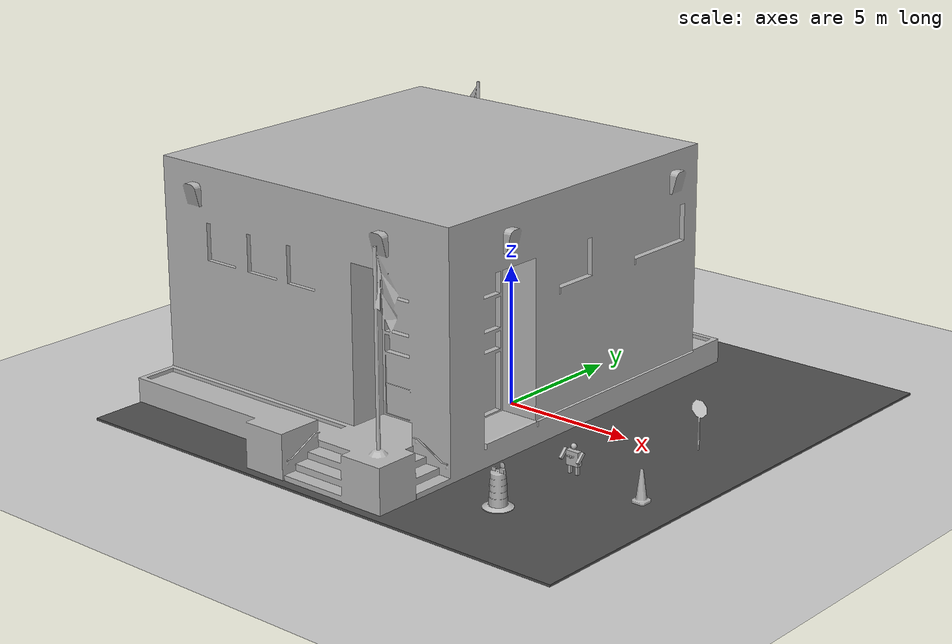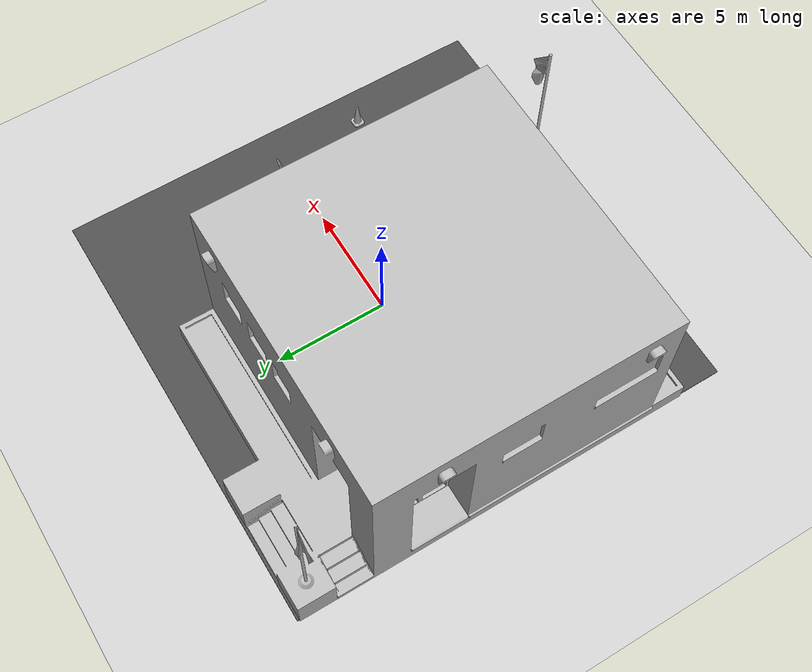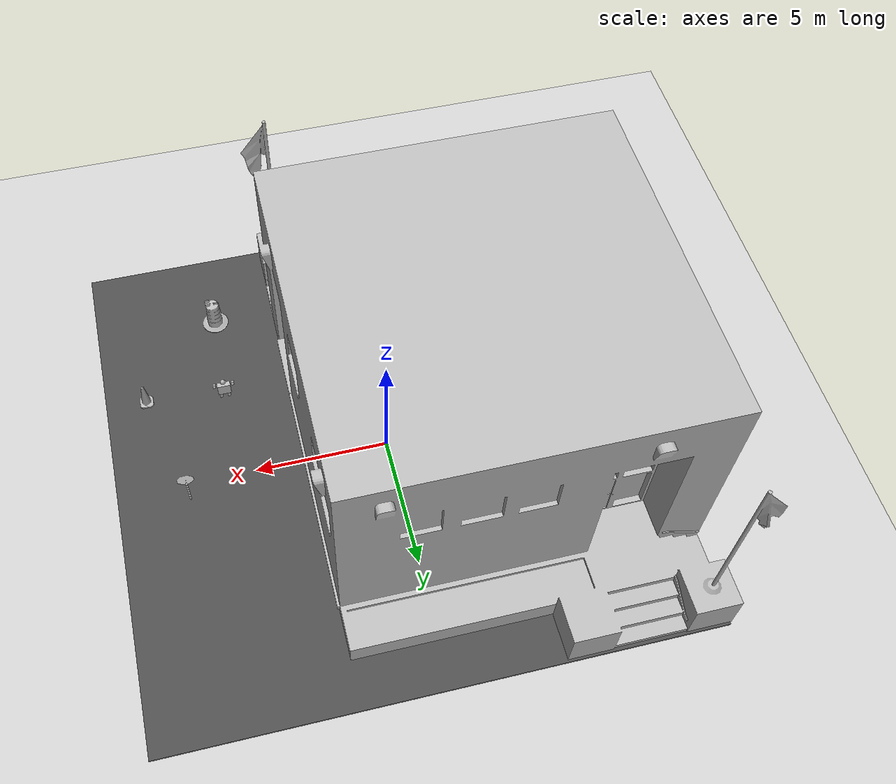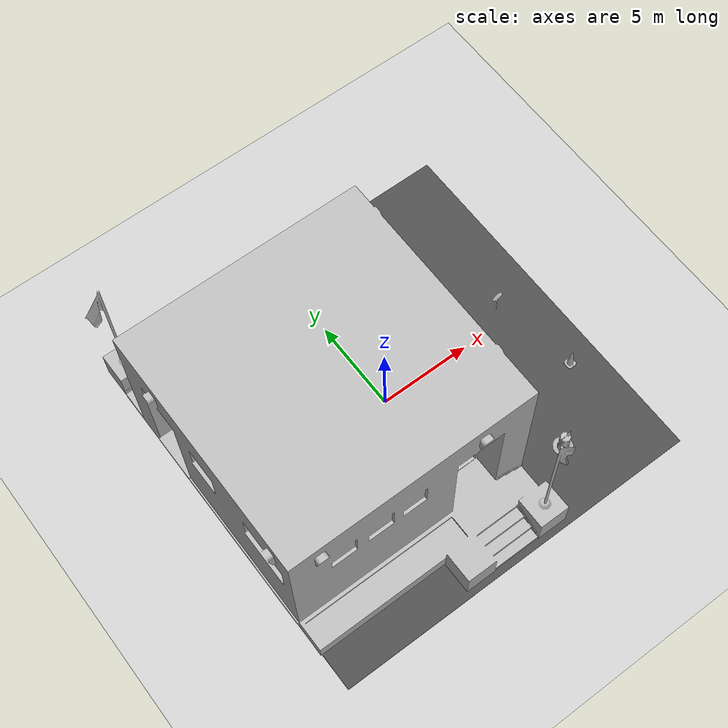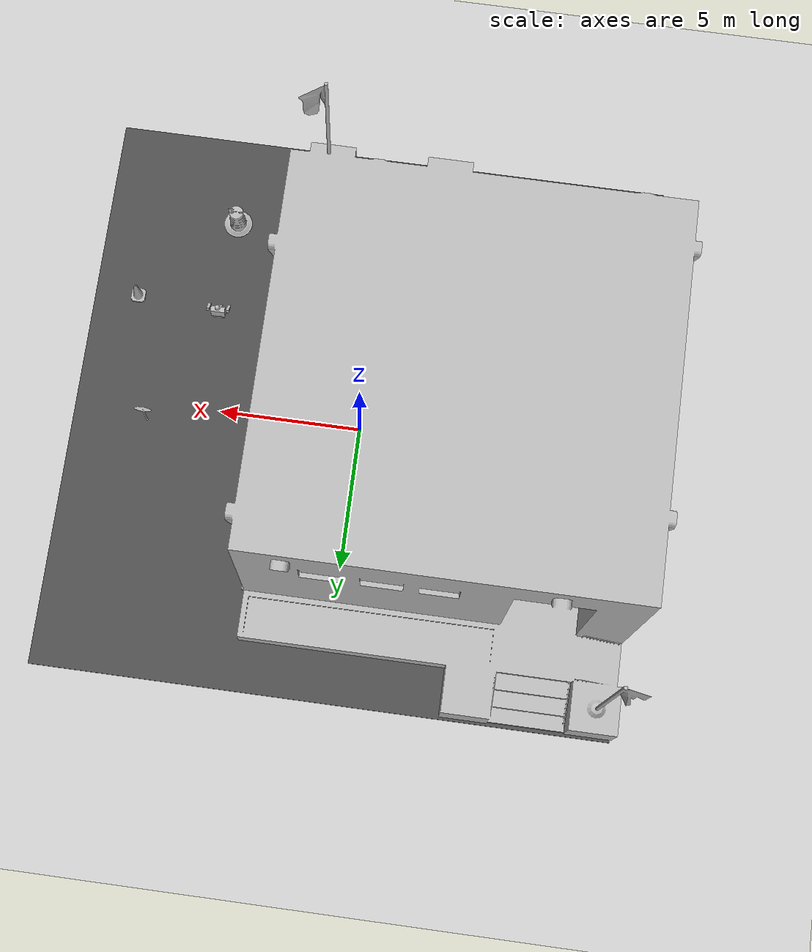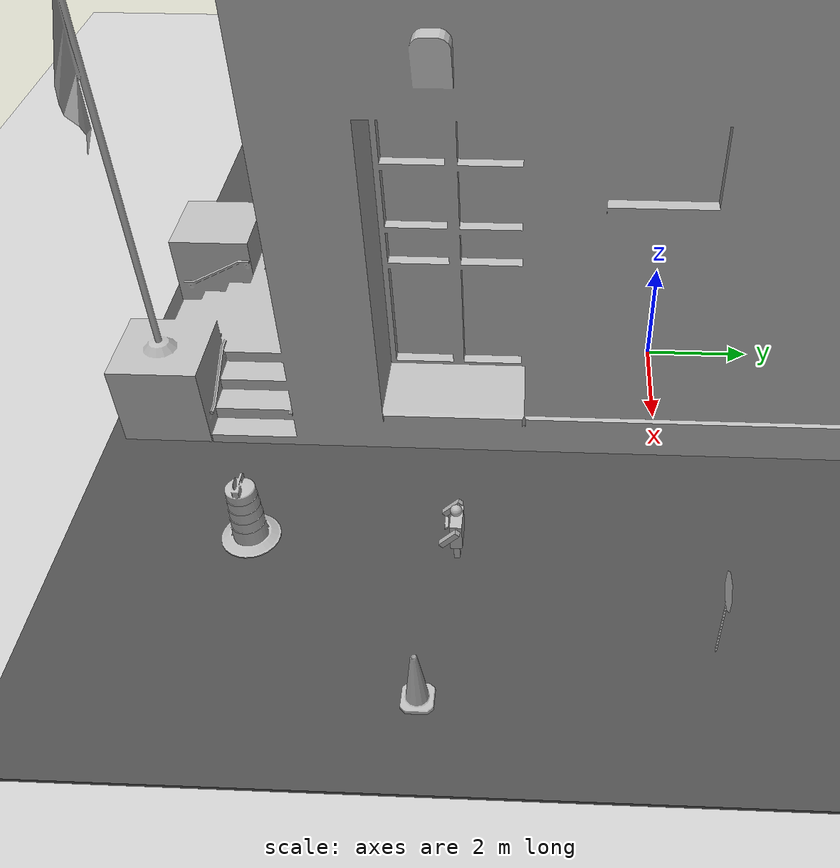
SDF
<sdf version="1.6">
 <world name="default">
  <light name="sun" type="directional">
   <pose>0 0 10 0 -0 0</pose>
   <diffuse>0.8 0.8 0.8 1</diffuse>
   <specular>0.2 0.2 0.2 1</specular>
   <attenuation>
    <range>1000</range>
    <constant>0.9</constant>
    <linear>0.01</linear>
    <quadratic>0.001</quadratic>
   </attenuation>
   <direction>-0.5 0.1 -0.9</direction>
  </light>
  <model name="ground_plane">
   <static>1</static>
   <link name="link">
    <collision name="collision">
     <geometry><plane><normal>0 0 1</normal><size>100 100</size></plane></geometry>
     <surface>
      <contact><collide_bitmask>65535</collide_bitmask></contact>
      <friction><ode><mu>100</mu><mu2>50</mu2></ode></friction>
     </surface>
    </collision>
    <visual name="visual">
     <cast_shadows>0</cast_shadows>
     <geometry><plane><normal>0 0 1</normal><size>100 100</size></plane></geometry>
     <material>
      <script><uri>file://media/materials/scripts/gazebo.material</uri><name>Gazebo/Grey</name></script>
     </material>
    </visual>
   </link>
  </model>
  <gravity>0 0 -9.8</gravity>
  <magnetic_field>6e-06 2.3e-05 -4.2e-05</magnetic_field>
  <atmosphere type="adiabatic"/>
  <physics name="default_physics" default="0" type="ode">
   <max_step_size>0.001</max_step_size>
   <real_time_factor>1</real_time_factor>
   <real_time_update_rate>1000</real_time_update_rate>
  </physics>
  <scene><ambient>0.4 0.4 0.4 1</ambient><background>0.7 0.7 0.7 1</background><shadows>1</shadows></scene>
  <audio><device>default</device></audio>
  <spherical_coordinates>
   <surface_model>EARTH_WGS84</surface_model>
   <latitude_deg>0</latitude_deg>
   <longitude_deg>0</longitude_deg>
   <elevation>0</elevation>
   <heading_deg>0</heading_deg>
  </spherical_coordinates>
  <model name="asphalt_plane">
   <static>1</static>
   <link name="link">
    <collision name="collision"><geometry><box><size>20 20 0.1</size></box></geometry></collision>
    <visual name="visual">
     <cast_shadows>0</cast_shadows>
     <geometry><box><size>20 20 0.1</size></box></geometry>
     <material>
      <script>
       <uri>model://asphalt_plane/materials/scripts</uri>
       <uri>model://asphalt_plane/materials/textures</uri>
       <name>vrc/asphalt</name>
      </script>
     </material>
    </visual>
   </link>
   <pose>0.147602 -0.298571 0 0 -0 0</pose>
  </model>
  <model name="police_station">
   <static>1</static>
   <link name="link">
    <collision name="collision_main">
     <pose>0 0 4.28998 0 -0 0</pose>
     <geometry><box><size>13.037 13.037 8.57995</size></box></geometry>
    </collision>
    <collision name="collision_landing">
     <pose>0 0 0.464086 0 -0 0</pose>
     <geometry><box><size>13.037 16.2446 0.928173</size></box></geometry>
    </collision>
    <visual name="visual">
     <geometry><mesh><uri>model://police_station/meshes/police_station.dae</uri></mesh></geometry>
    </visual>
   </link>
   <pose>-3.3957 -0.182651 0 0 -0 0</pose>
  </model>
  <model name="Stop Sign">
   <static>1</static>
   <link name="link">
    <collision name="collision">
     <geometry><mesh><uri>model://stop_sign/meshes/stop_sign.dae</uri></mesh></geometry>
    </collision>
    <visual name="visual">
     <geometry><mesh><uri>model://stop_sign/meshes/stop_sign.dae</uri></mesh></geometry>
     <material>
      <script>
       <uri>model://stop_sign/materials/scripts</uri>
       <uri>model://stop_sign/materials/textures</uri>
       <name>StopSign/Diffuse</name>
      </script>
     </material>
    </visual>
   </link>
   <pose>7.51495 0.66619 0 0 -0 0</pose>
  </model>
  <model name="Construction Cone">
   <link name="link">
    <collision name="collision">
     <geometry>
      <mesh><scale>10 10 10</scale><uri>model://construction_cone/meshes/construction_cone.dae</uri></mesh>
     </geometry>
    </collision>
    <visual name="visual">
     <geometry>
      <mesh><scale>10 10 10</scale><uri>model://construction_cone/meshes/construction_cone.dae</uri></mesh>
     </geometry>
    </visual>
    <inertial>
     <inertia><ixx>1</ixx><ixy>0</ixy><ixz>0</ixz><iyy>1</iyy><iyz>0</iyz><izz>1</izz></inertia>
     <mass>1</mass>
    </inertial>
   </link>
   <pose>8.5968 -3.88883 0.049999 3e-06 -0 0</pose>
  </model>
  <model name="Construction Barrel">
   <link name="link">
    <inertial>
     <pose>0 0 0.4 0 -0 0</pose>
     <mass>500</mass>
     <inertia><ixx>51.2096</ixx><iyy>51.2096</iyy><izz>25</izz><ixy>0</ixy><ixz>0</ixz><iyz>0</iyz></inertia>
    </inertial>
    <collision name="collision">
     <geometry><mesh><uri>model://construction_barrel/meshes/construction_barrel.dae</uri></mesh></geometry>
    </collision>
    <visual name="visual">
     <geometry><mesh><uri>model://construction_barrel/meshes/construction_barrel.dae</uri></mesh></geometry>
    </visual>
   </link>
   <pose>5.43706 -7.08629 0.049999 -1e-06 -2e-06 2.9e-05</pose>
  </model>
  <model name="person">
   <static>1</static>
   <link name="Lleg">
    <collision name="collision"><geometry><box><size>0.1 0.1 0.8</size></box></geometry></collision>
    <visual name="visual"><geometry><box><size>0.1 0.1 0.8</size></box></geometry></visual>
   </link>
   <link name="Rleg">
    <pose>0.3 0 0 0 -0 0</pose>
    <collision name="collision"><geometry><box><size>0.1 0.1 0.8</size></box></geometry></collision>
    <visual name="visual"><geometry><box><size>0.1 0.1 0.8</size></box></geometry></visual>
   </link>
   <link name="Torso">
    <pose>0.15 0 0.6 0 -0 0</pose>
    <collision name="collision"><geometry><box><size>0.5 0.2 0.5</size></box></geometry></collision>
    <visual name="visual"><geometry><box><size>0.5 0.2 0.5</size></box></geometry></visual>
   </link>
   <link name="Larm">
    <pose>0.5 -0.1 0.7 -0.785 0 0</pose>
    <collision name="collision"><geometry><box><size>0.1 0.1 0.4</size></box></geometry></collision>
    <visual name="visual"><geometry><box><size>0.1 0.1 0.4</size></box></geometry></visual>
   </link>
   <link name="Rarm">
    <pose>-0.2 -0.1 0.7 -0.785 0 0</pose>
    <collision name="collision"><geometry><box><size>0.1 0.1 0.4</size></box></geometry></collision>
    <visual name="visual"><geometry><box><size>0.1 0.1 0.4</size></box></geometry></visual>
   </link>
   <link name="Head">
    <pose>0.15 0 1 0 -0 0</pose>
    <collision name="collision"><geometry><sphere><radius>0.1</radius></sphere></geometry></collision>
    <visual name="visual"><geometry><sphere><radius>0.1</radius></sphere></geometry></visual>
   </link>
   <link name="kinect::link">
    <inertial><mass>0.1</mass></inertial>
    <collision name="collision"><geometry><box><size>0.073 0.276 0.072</size></box></geometry></collision>
    <visual name="visual"><geometry><mesh><uri>model://kinect/meshes/kinect.dae</uri></mesh></geometry></visual>
    <sensor name="camera" type="depth">
     <update_rate>20</update_rate>
     <camera name="__default__">
      <horizontal_fov>1.0472</horizontal_fov>
      <image><width>640</width><height>480</height><format>R8G8B8</format></image>
      <clip><near>0.05</near><far>3</far></clip>
     </camera>
     <plugin name="camera_plugin" filename="libgazebo_ros_openni_kinect.so">
      <baseline>0.2</baseline>
      <alwaysOn>1</alwaysOn>
      <updateRate>0.0</updateRate>
      <cameraName>camera_ir</cameraName>
      <imageTopicName>/camera/rgb/image_rect_color</imageTopicName>
      <cameraInfoTopicName>/camera/rgb/camera_info</cameraInfoTopicName>
      <depthImageTopicName>/camera/depth_registered/image_raw</depthImageTopicName>
      <depthImageCameraInfoTopicName>/camera/depth_registered/camera_info</depthImageCameraInfoTopicName>
      <pointCloudTopicName>/camera/depth_registered/points</pointCloudTopicName>
      <frameName>camera_link</frameName>
      <pointCloudCutoff>0.5</pointCloudCutoff>
      <pointCloudCutoffMax>3.0</pointCloudCutoffMax>
      <distortionK1>0</distortionK1>
      <distortionK2>0</distortionK2>
      <distortionK3>0</distortionK3>
      <distortionT1>0</distortionT1>
      <distortionT2>0</distortionT2>
      <CxPrime>0</CxPrime>
      <Cx>0</Cx>
      <Cy>0</Cy>
      <focalLength>0</focalLength>
      <hackBaseline>0</hackBaseline>
     </plugin>
    </sensor>
    <pose>0.15 -0.2 0.7 0 0 -1.5</pose>
   </link>
   <joint name="kinect_joint" type="fixed"><child>kinect::link</child><parent>chassis</parent></joint>
   <pose>5.43268 -3.51038 0 0 -0 0</pose>
  </model>
 </world>
</sdf>
